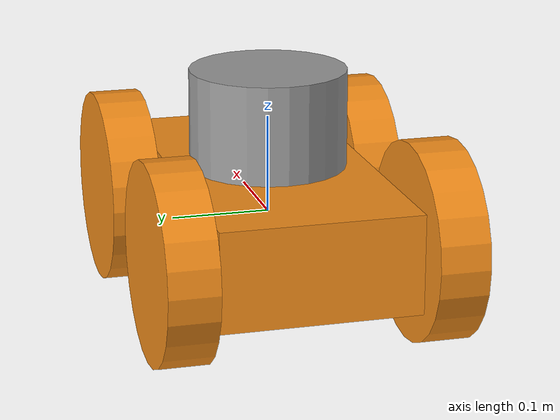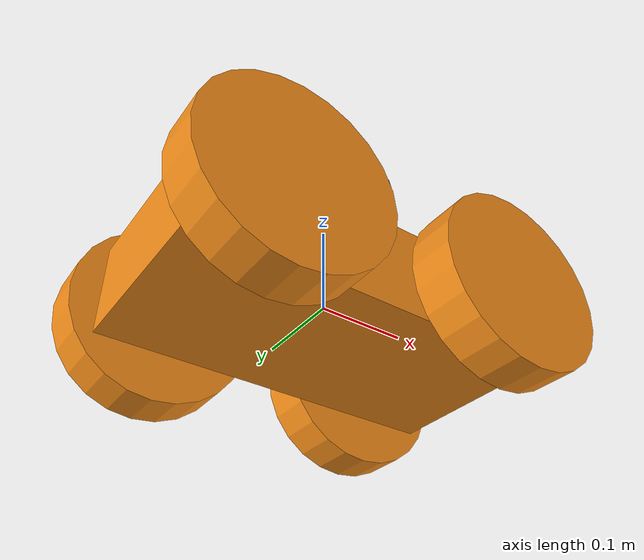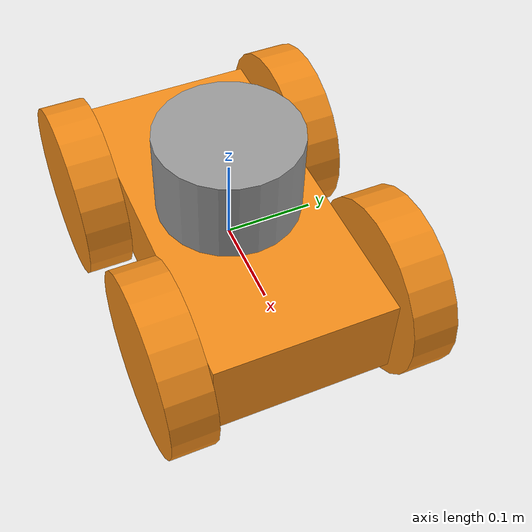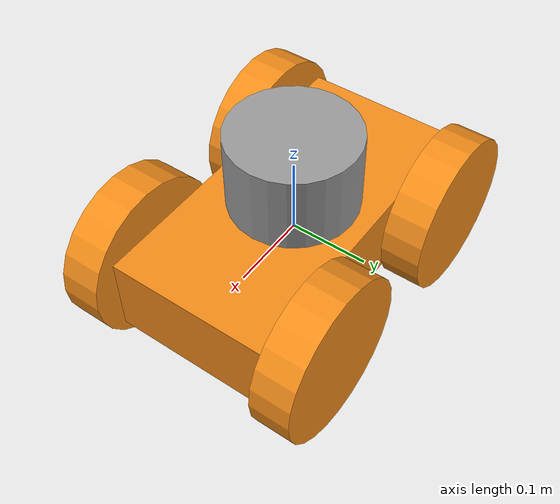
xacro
<?xml version="1.0"?>
<robot name="my_robot" xmlns:xacro="http://www.ros.org/wiki/xacro">
  <!-- more description -->

<xacro:include filename="$(find my_robot)/urdf/my_robot.gazebo.xacro"/>
<xacro:arg name="gpu" default="false"/>
<xacro:property name="gpu" value="$(arg gpu)" />

    <link name="base_footprint"/>

    <joint name="base_joint" type="fixed">
        <parent link="base_footprint"/>
        <child link="robot_base_link"/>
        <origin xyz="0.0 0.0 0.00" rpy="0 0 0"/>
    </joint>

    <link name="robot_base_link">
        <inertial>
            <mass value="100"/>
            <inertia ixx="100"  ixy="0"  ixz="0" iyy="100" iyz="0" izz="100" />
        </inertial>
        <collision>
            <geometry>
            <box size="0.4 0.2 0.1"/>
            </geometry>
        </collision>
        <visual>
            <geometry>
            <box size="0.4 0.2 0.1"/>
            </geometry>
        </visual>

    </link>

    <link name="platform">
        <inertial>
            <mass value="3"/>
            <inertia ixx="50"  ixy="0"  ixz="0" iyy="50" iyz="0" izz="50" />
        </inertial>
        <collision>
            <geometry>
            <cylinder length="0.1" radius="0.08"/>
            </geometry>
        </collision>
        <visual>
            <geometry>
            <cylinder length="0.1" radius="0.08"/>
            </geometry>
        </visual>
    </link>

    <joint name="platform_joint" type="fixed">
        <parent link="robot_base_link"/>
        <child link="platform"/>
        <origin xyz="0.0 0.0 0.1" rpy="0 0 0"/>
    </joint>

    <link name="left_front_wheel">
        <inertial>
            <origin xyz="0 0 0" rpy="0 0 0"/>
            <mass value="3"/>
            <inertia ixx="10"  ixy="0"  ixz="0" iyy="10" iyz="0" izz="10" />
        </inertial>
        <collision>
        <origin xyz="0 0 0" rpy="0 1.5707 1.5707"/>
            <geometry>
            <cylinder length="0.05" radius="0.1"/>
            </geometry>
        </collision>
        <visual>
        <origin xyz="0 0 0" rpy="0 1.5707 1.5707"/>
            <geometry>
            <cylinder length="0.05" radius="0.1"/>
            </geometry>
        </visual>
    </link>

    <link name="right_front_wheel">
        <collision>
            <origin xyz="0 0 0" rpy="0 1.5707 1.5707"/>
            <geometry>
            <cylinder length="0.05" radius="0.1"/>
            </geometry>
        </collision>
        <visual>
            <origin xyz="0 0 0" rpy="0 1.5707 1.5707"/>
            <geometry>
            <cylinder length="0.05" radius="0.1"/>
            </geometry>
        </visual>
        <inertial>
            <origin xyz="0 0 0" rpy="0 0 0"/>
            <mass value="3"/>
            <inertia ixx="10"  ixy="0"  ixz="0" iyy="10" iyz="0" izz="10" />
        </inertial>
        </link>

    <link name="left_back_wheel">
        <inertial>
            <origin xyz="0 0 0" rpy="0 0 0"/>
            <mass value="10"/>
            <inertia ixx="10"  ixy="0"  ixz="0" iyy="10" iyz="0" izz="100" />
        </inertial>
        <collision>
        <origin xyz="0 0 0" rpy="0 1.5707 1.5707"/>
            <geometry>
            <cylinder length="0.05" radius="0.1"/>
            </geometry>
        </collision>
        <visual>
        <origin xyz="0 0 0" rpy="0 1.5707 1.5707"/>
            <geometry>
            <cylinder length="0.05" radius="0.1"/>
            </geometry>
        </visual>
    </link>

    <link name="right_back_wheel">
        <collision>
            <origin xyz="0 0 0" rpy="0 1.5707 1.5707"/>
            <geometry>
            <cylinder length="0.05" radius="0.1"/>
            </geometry>
        </collision>
        <visual>
            <origin xyz="0 0 0" rpy="0 1.5707 1.5707"/>
            <geometry>
            <cylinder length="0.05" radius="0.1"/>
            </geometry>
        </visual>
        <inertial>
            <origin xyz="0 0 0" rpy="0 0 0"/>
            <mass value="3"/>
            <inertia ixx="10"  ixy="0"  ixz="0" iyy="10" iyz="0" izz="10" />
        </inertial>
    </link>

    <joint type="continuous" name="left_front_hinge">
        <origin xyz="0.13 0.13 0" rpy="0 0 0"/>
        <child link="left_front_wheel"/>
        <parent link="robot_base_link"/>
        <axis xyz="0 1 0"/>
    </joint>

    <joint type="continuous" name="right_front_hinge">
        <origin xyz="0.13 -0.13 0" rpy="0 0 0"/>
        <child link="right_front_wheel"/>
        <parent link="robot_base_link"/>
        <axis xyz="0 1 0"/>
    </joint>

    <joint type="continuous" name="left_back_hinge">
        <origin xyz="-0.13 0.13 0" rpy="0 0 0"/>
        <child link="left_back_wheel"/>
        <parent link="robot_base_link"/>
        <axis xyz="0 1 0"/>
    </joint>

    <joint type="continuous" name="right_back_hinge">
        <origin xyz="-0.13 -0.13 0" rpy="0 0 0"/>
        <child link="right_back_wheel"/>
        <parent link="robot_base_link"/>
        <axis xyz="0 1 0"/>
    </joint>

    <link name="imu_link"/>

    <joint name="imu_joint" type="fixed">
        <parent link="robot_base_link"/>
        <child link="imu_link"/>
        <origin xyz="-0.032 0 0.172" rpy="0 0 0"/>
    </joint>

    <gazebo>
        <plugin name="gazebo_ros_control" filename="libgazebo_ros_control.so">
        <robotNamespace>/</robotNamespace>
        </plugin>
    </gazebo>

</robot>
